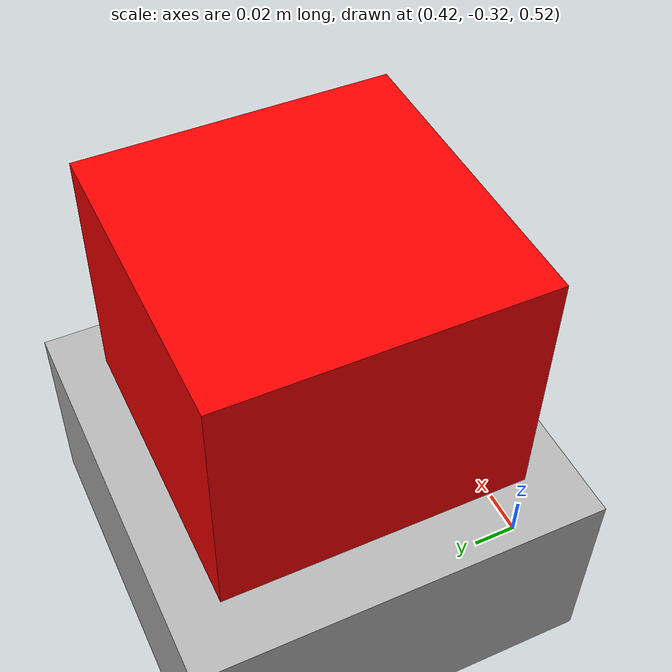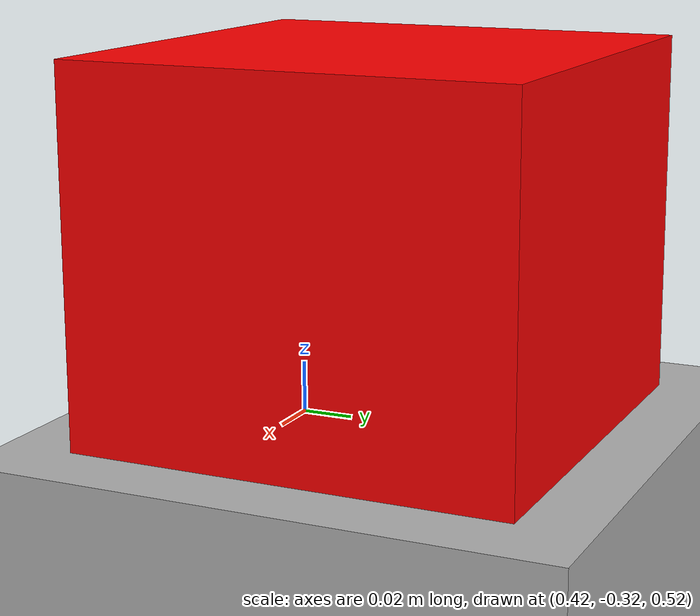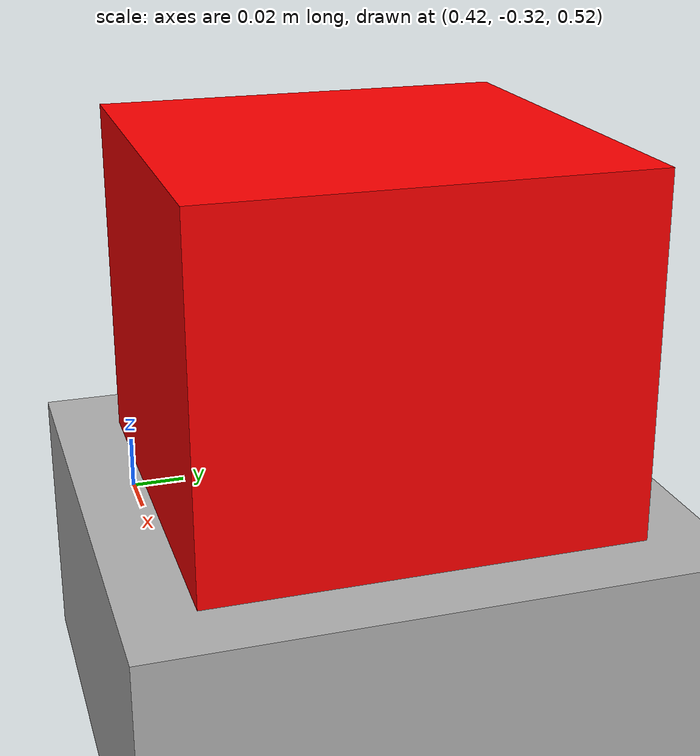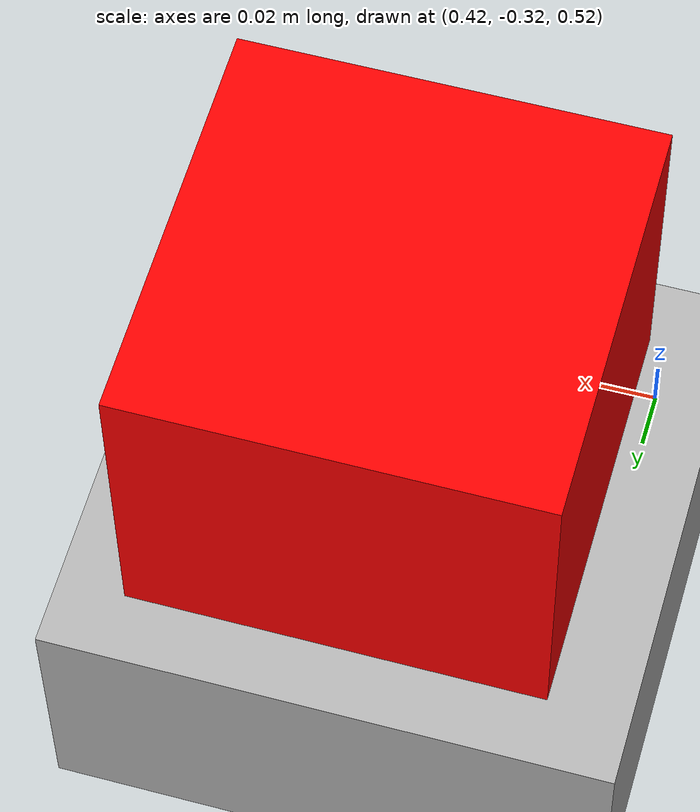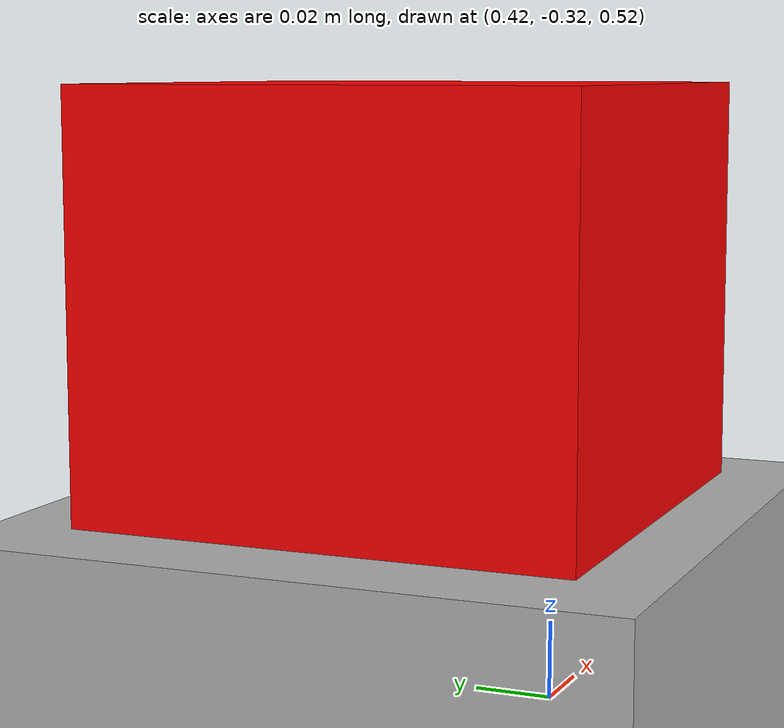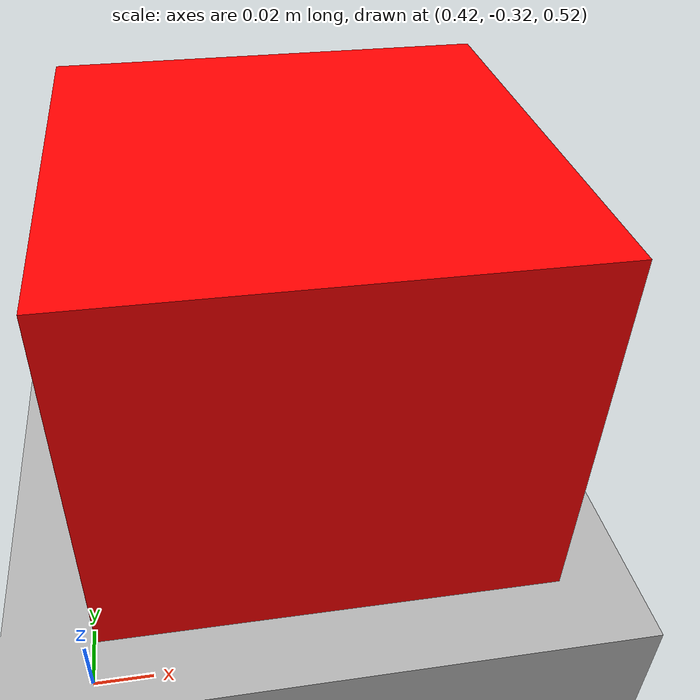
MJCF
<mujoco model="platform_and_box">
    <worldbody>
        <!-- Fixed platform -->
        <body name="platform" pos="1 0 0.5">
            <geom name="platform_geom" type="box" size="0.7 0.7 0.05" rgba="0.7 0.7 0.7 1" contype="1" conaffinity="1"/>
        </body>

        <!-- Free box -->
        <body name="free_box" pos="0.5 -0.25 0.6">
            <geom name="box_geom" type="box" size="0.075 0.075 0.075" rgba="1 0 0 1"/>
            <joint name="free_joint" type="free"/>
        </body>
    </worldbody>
</mujoco>
